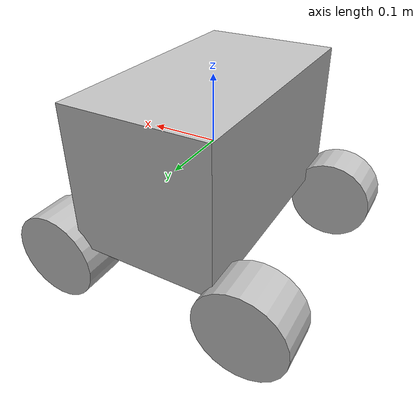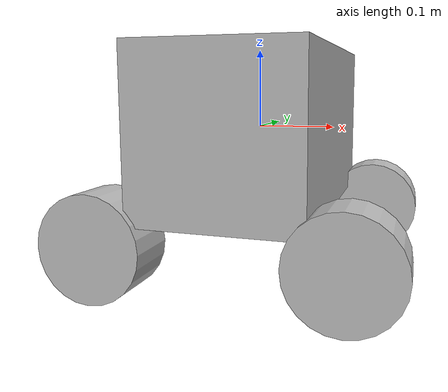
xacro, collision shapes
<?xml version="1.0" encoding="utf-8"?>
<robot xmlns:xacro="http://www.ros.org/wiki/xacro"
       name="leo_description">

  <xacro:arg name="robot_namespace" default=""/>

  <!-- Import others xacro proprieties -->
  <xacro:include filename="$(find leo_description)/urdf/materials.xacro" />

  <!-- Wheel Mounting Positions -->
  <xacro:property name="wheelbase" value="${0.14211*2}" />
  <xacro:property name="wheel_vertical_offset" value="${0.13136*2}" />
  <xacro:property name="track" value="${0.16833*2}" />
  <xacro:property name="wheel_radius" value="0.064905" />
  <xacro:property name="wheel_width" value="0.06634" />

   <!-- LEO Body Dimensions [blender units] (z,y,x)-->
  <xacro:property name="body_height" value="0.20733" />
  <xacro:property name="body_width" value="0.36934" />
  <xacro:property name="body_length" value="0.20733" />

  <!-- LEO Body Dimensions [blender units] (z,y,x)-->
  <xacro:property name="body_mass" value="8.2573504e-02" />   <!-- kg -->
  <xacro:property name="wheel_mass" value="2.8498940e-03" />   <!-- kg -->

  <!-- Base_footprint = dummy link to avoid problems with Rviz because of Inerzia in the base link-->
  <link name="base_footprint"/>

  <joint name="base_joint" type="fixed">
    <parent link="base_footprint"/>
    <child link="base_link"/>
    <origin xyz="0.0 0.0 0.0" rpy="0 0 0"/>
  </joint>

  <link name="base_link">
    <visual>
      <origin xyz="0 0 0" rpy="0 0 0" />
      <geometry>
        <mesh filename="package://leo_description/meshes/base_link.STL"/>
      </geometry>
      <material name="base">
        <color rgba="0.752941176470588 0.752941176470588 0.752941176470588 1"/>
      </material>
    </visual>
    <collision>
      <origin xyz="0 0 0" rpy="0 0 0"/>
      <geometry>
        <box size="${body_length} ${body_width} ${body_height}"/>
      </geometry>
    </collision>
    <inertial>
      <mass value="${body_mass}"/>
      <inertia ixx="${body_mass*(body_width*body_width+body_height*body_height)/12}"
               ixy="0.0"
               ixz="0.0"
               iyy="${body_mass*(body_length*body_length+body_height*body_height)/12}"
               iyz="0.0"
               izz="${body_mass*(body_length*body_length+body_width*body_width)/12}" /> <!-- kg*m^4 -->
    </inertial>
  </link>

  <xacro:macro name="wheel_link" params="name model">
    <link name="wheel_${name}_link">
      <visual>
        <origin xyz="0 0 0" rpy="0 0 0"/>
        <geometry>
          <mesh filename="package://leo_description/meshes/wheel_${model}.STL"/>
        </geometry>
        <material name="wheel">
          <color rgba="0.752941176470588 0.752941176470588 0.752941176470588 1"/>
        </material>
      </visual>
      <collision>
        <origin xyz="0 0 0" rpy="0 0 0"/>
        <geometry>
          <cylinder length="${wheel_width}" radius="${wheel_radius}"/>
        </geometry>
      </collision>
     <inertial>
      <mass value="${wheel_mass}" />                              <!-- kg -->
      <inertia ixx="${wheel_mass*(wheel_width*wheel_width+3*wheel_radius*wheel_radius)/12}"
               ixy="0.0"
               ixz="0.0"
               iyy="${wheel_mass*(wheel_width*wheel_width+3*wheel_radius*wheel_radius)/12}"
               iyz="0.0"
               izz="${wheel_mass*(wheel_radius*wheel_radius)/2}" /> <!-- kg*m^4 -->
    </inertial>
    </link>
  </xacro:macro>

  <xacro:wheel_link name="FL" model="left"/>
  <xacro:wheel_link name="FR" model="right"/>
  <xacro:wheel_link name="RL" model="left"/>
  <xacro:wheel_link name="RR" model="right"/>

  <joint name="wheel_FL_joint" type="continuous">
    <origin xyz="0.14211 0.16833 -0.13136" rpy="${pi/2} 0 0"/>
    <parent link="base_link"/>
    <child link="wheel_FL_link"/>
    <axis xyz="0 0 -1"/>
  </joint>

  <joint name="wheel_FR_joint" type="continuous">
    <origin xyz="0.14211 -0.16026 -0.13136" rpy="${pi/2} 0 0"/>
    <parent link="base_link"/>
    <child link="wheel_FR_link"/>
    <axis xyz="0 0 -1"/>
  </joint>

  <joint name="wheel_RL_joint" type="continuous">
    <origin xyz="-0.14704 0.16833 -0.13136" rpy="${pi/2} 0 0"/>
    <parent link="base_link"/>
    <child link="wheel_RL_link"/>
    <axis xyz="0 0 -1"/>
  </joint>

  <joint name="wheel_RR_joint" type="continuous">
    <origin xyz="-0.14704 -0.16026 -0.13136" rpy="${pi/2} 0 0"/>
    <parent link="base_link"/>
    <child link="wheel_RR_link"/>
    <axis xyz="0 0 -1"/>
  </joint>

  <!--Camera Links-->

  <link name="camera_link"/>

  <joint name="camera_joint" type="fixed">
      <origin xyz="0.08 0 -0.04" rpy="${-pi/2 - 0.2} 0 ${-pi/2}"/>
      <parent link="base_link"/>
      <child link="camera_link"/>
  </joint>

  <!--IMU Link-->

  <link name="imu_link"/>

  <joint name="imu_joint" type="fixed">
    <parent link="base_link"/>
    <child link="imu_link"/>
    <origin xyz="0.05 0 0.00" rpy="0 0 0"/>
  </joint>

  <!--Scanner Link-->

  <joint name="scan_joint" type="fixed">
    <parent link="base_link"/>
    <child link="base_scan"/>
    <origin xyz="0.04 0 0.0" rpy="0 0 0"/>
  </joint>

  <link name="base_scan">
    <visual>
      <origin xyz="0.04 0 0.0" rpy="1.5707 0 0"/>
      <geometry>
        <mesh filename="package://leo_description/meshes/rplidar.dae" scale="0.001 0.001 0.001" />
      </geometry>
    </visual>

    <collision>
      <origin xyz=" 0 0 0.0" rpy="1.5707 0 0"/>
      <geometry>
        <cylinder length="0.01" radius="0.055"/>
      </geometry>
    </collision>

    <inertial>
      <mass value="0.114" />
      <origin xyz="0 0 0" />
      <inertia ixx="0.001" ixy="0.0" ixz="0.0"
               iyy="0.001" iyz="0.0"
               izz="0.001" />
    </inertial>
  </link>

<!--Gazebo-->
  <gazebo>
    <plugin name="gazebo_ros_control" filename="libgazebo_ros_control.so">
      <legacyModeNS>true</legacyModeNS>
    </plugin>
  </gazebo>

<gazebo reference="base_link">
    <material>Gazebo/Red</material>
  </gazebo>

  <gazebo reference="laser">
    <material>Gazebo/Black</material>
  </gazebo>

  <gazebo reference="camera_link">
    <material>Gazebo/Black</material>
  </gazebo>

  <gazebo reference="wheel_FL_link">
    <mu1>0.1</mu1>
    <mu2>0.1</mu2>
    <kp>500000.0</kp>
    <kd>10.0</kd>
    <minDepth>0.001</minDepth>
    <maxVel>0.1</maxVel>
    <fdir1>1 0 0</fdir1>
    <material>Gazebo/Black</material>
  </gazebo>

  <gazebo reference="wheel_FR_link">
    <mu1>0.1</mu1>
    <mu2>0.1</mu2>
    <kp>500000.0</kp>
    <kd>10.0</kd>
    <minDepth>0.001</minDepth>
    <maxVel>0.1</maxVel>
    <fdir1>1 0 0</fdir1>
    <material>Gazebo/Black</material>
  </gazebo>

  <gazebo reference="wheel_RL_link">
    <mu1>0.1</mu1>
    <mu2>0.1</mu2>
    <kp>500000.0</kp>
    <kd>10.0</kd>
    <minDepth>0.001</minDepth>
    <maxVel>0.1</maxVel>
    <fdir1>1 0 0</fdir1>
    <material>Gazebo/Black</material>
  </gazebo>

  <gazebo reference="wheel_RR_link">
    <mu1>0.1</mu1>
    <mu2>0.1</mu2>
    <kp>500000.0</kp>
    <kd>10.0</kd>
    <minDepth>0.001</minDepth>
    <maxVel>0.1</maxVel>
    <fdir1>1 0 0</fdir1>
    <material>Gazebo/Black</material>
  </gazebo>

   <gazebo reference="camera_link">
    <sensor type="depth" name="openni_camera_camera">
      <always_on>1</always_on>
      <visualize>true</visualize>
      <camera>
        <horizontal_fov>1.047</horizontal_fov>
        <image>
          <width>640</width>
          <height>480</height>
          <format>R8G8B8</format>
        </image>
        <depth_camera>

        </depth_camera>
        <clip>
          <near>0.1</near>
          <far>100</far>
        </clip>
      </camera>
      <plugin name="kinect_controller" filename="libgazebo_ros_openni_kinect.so">
        <alwaysOn>true</alwaysOn>
        <updateRate>10.0</updateRate>
        <cameraName>camera</cameraName>
        <frameName>camera_depth_frame</frameName>
        <imageTopicName>rgb/image_raw</imageTopicName>
        <depthImageTopicName>depth/image_raw</depthImageTopicName>
        <pointCloudTopicName>depth/points</pointCloudTopicName>
        <cameraInfoTopicName>rgb/camera_info</cameraInfoTopicName>
        <depthImageCameraInfoTopicName>depth/camera_info</depthImageCameraInfoTopicName>
        <pointCloudCutoff>0.4</pointCloudCutoff>
        <hackBaseline>0.07</hackBaseline>
        <distortionK1>0.0</distortionK1>
        <distortionK2>0.0</distortionK2>
        <distortionK3>0.0</distortionK3>
        <distortionT1>0.0</distortionT1>
        <distortionT2>0.0</distortionT2>
        <CxPrime>0.0</CxPrime>
        <Cx>0.0</Cx>
        <Cy>0.0</Cy>
        <focalLength>0.0</focalLength>
      </plugin>
    </sensor>
  </gazebo>

  <gazebo reference="base_scan">
    <sensor type="ray" name="lds_lfcd_sensor">
      <pose>0 0 0.00 0 0 0</pose>
      <visualize>true</visualize>
      <update_rate>5</update_rate>
      <ray>
        <scan>
          <horizontal>
            <samples>720</samples>
            <resolution>1</resolution>
            <min_angle>-1.0472</min_angle>
            <max_angle>1.0472</max_angle>
          </horizontal>
        </scan>
        <range>
          <min>0.2</min>
          <max>5</max>
          <resolution>0.015</resolution>
        </range>
        <noise>
          <type>gaussian</type>
          <mean>0.0</mean>
          <stddev>0.01</stddev>
        </noise>
      </ray>
      <plugin name="gazebo_ros_lds_lfcd_controller" filename="libgazebo_ros_laser.so">
        <topicName>scan</topicName>
        <frameName>base_scan</frameName>
      </plugin>
    </sensor>
  </gazebo>

   <gazebo reference="imu_link">
    <gravity>true</gravity>
    <sensor name="imu_sensor" type="imu">
      <always_on>true</always_on>
      <update_rate>10</update_rate>
      <visualize>true</visualize>
      <topic>imu</topic>
      <plugin filename="libgazebo_ros_imu_sensor.so" name="imu_plugin">
        <topicName>imu</topicName>
        <bodyName>imu_link</bodyName>
        <updateRateHZ>10.0</updateRateHZ>
        <gaussianNoise>0.0</gaussianNoise>
        <xyzOffset>0 0 0</xyzOffset>
        <rpyOffset>0 0 0</rpyOffset>
        <frameName>imu_link</frameName>
      </plugin>
      <pose>0 0 0 0 0 0</pose>
    </sensor>
  </gazebo>

  <gazebo>
    <plugin name="skid_steer_drive_controller" filename="libgazebo_ros_skid_steer_drive.so">
      <robotNamespace>/</robotNamespace>
      <updateRate>100</updateRate>
      <odometryTopic>odom</odometryTopic>
      <odometryFrame>odom</odometryFrame>
      <odometrySource>world</odometrySource>
      <publishOdomTF>true</publishOdomTF>
      <robotBaseFrame>base_footprint</robotBaseFrame>
      <publishWheelTF>true</publishWheelTF>
      <publishTf>true</publishTf>
      <publishWheelJointState>true</publishWheelJointState>
      <wheelSeparation>0.182</wheelSeparation>
      <wheelDiameter>0.064905</wheelDiameter>
      <torque>10</torque>
      <leftFrontJoint>wheel_FL_joint</leftFrontJoint>
      <rightFrontJoint>wheel_FR_joint</rightFrontJoint>
      <leftRearJoint>wheel_RL_joint</leftRearJoint>
      <rightRearJoint>wheel_RR_joint</rightRearJoint>
      <topicName>cmd_vel</topicName>
      <commandTopic>cmd_vel</commandTopic>
      <broadcastTF>true</broadcastTF>
      <covariance_x>0.000100</covariance_x>
      <covariance_y>0.000100</covariance_y>
      <covariance_yaw>0.010000</covariance_yaw>
    </plugin>
  </gazebo>

</robot>

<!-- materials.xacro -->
<!-- Material Color by xacro file-->
<robot>

  <material name="OffWhite">
    <color rgba="0.8 0.8 0.8 0.9"/>
  </material>

  <material name="black">
    <color rgba="0.0 0.0 0.0 1.0"/>
  </material>

  <material name="blue">
    <color rgba="0.0 0.0 0.8 1.0"/>
  </material>

  <material name="green">
    <color rgba="0.0 0.8 0.0 1.0"/>
  </material>

  <material name="gray">
    <color rgba="0.7 0.7 0.7 1.0"/>
  </material>

  <material name="darkgray">
    <color rgba="0.3 0.3 0.3 1.0"/>
  </material>

  <material name="red">
    <color rgba="0.8 0.0 0.0 1.0"/>
  </material>

  <material name="white">
    <color rgba="1.0 1.0 1.0 1.0"/>
  </material>

  <material name="yellow">
    <color rgba="0.8 0.8 0.0 1.0"/>
  </material>

</robot>
